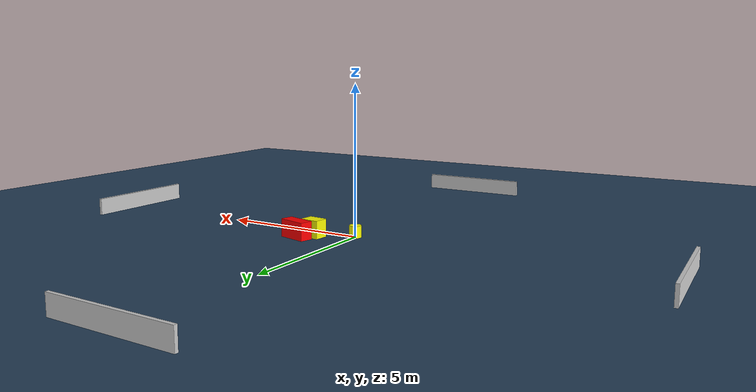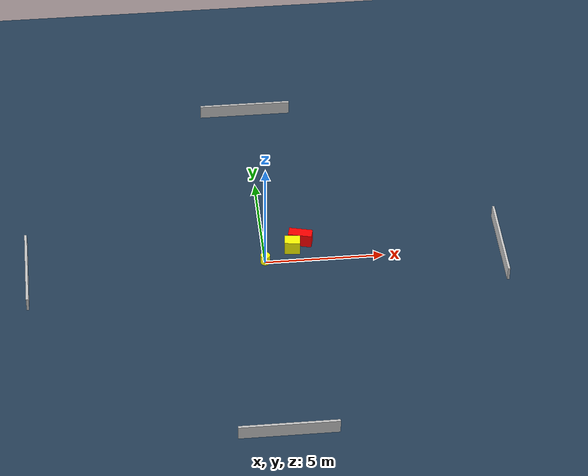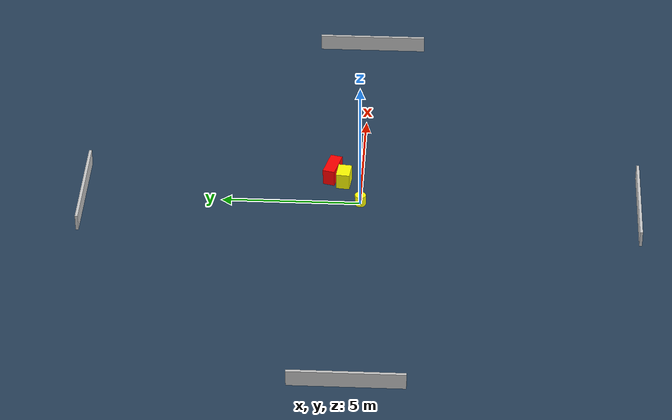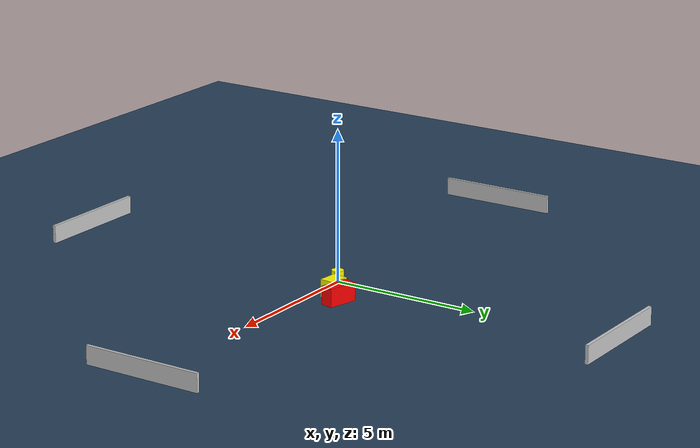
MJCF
<?xml version="1.0" ?>
<mujoco model="generated_environment">
  <option timestep="0.01" integrator="RK4" cone="elliptic"/>
  <default>
    <geom density="1"/>
  </default>
  <asset>
    <texture builtin="gradient" height="3072" name="skybox" rgb1="0.3 0.5 0.7" rgb2="0 0 0" type="skybox" width="512"/>
    <texture builtin="checker" height="300" name="groundplane" rgb1="0.2 0.3 0.4" rgb2="0.1 0.2 0.3" type="2d" width="300"/>
    <material name="groundplane" reflectance="0.2" texrepeat="5 5" texture="groundplane"/>
  </asset>
  <worldbody>
    <light dir="0 0 -1" directional="true" pos="0 0 1.5"/>
    <geom condim="3" friction="0.5 0.005 0.001" material="groundplane" name="floor" pos="0 0 0" size="0 0 0.05" type="plane"/>
    <body name="walls">
      <geom name="wall_1" condim="4" pos="-10.0 0.0 0.3" rgba="0.800000011920929 0.800000011920929 0.800000011920929 1.0" size="0.05 2.0 0.3" type="box"/>
      <geom name="wall_2" condim="4" pos="10.0 0.0 0.3" rgba="0.800000011920929 0.800000011920929 0.800000011920929 1.0" size="0.05 2.0 0.3" type="box"/>
      <geom name="wall_3" condim="4" pos="0.0 -10.0 0.3" rgba="0.800000011920929 0.800000011920929 0.800000011920929 1.0" size="2.0 0.05 0.3" type="box"/>
      <geom name="wall_4" condim="4" pos="0.0 10.0 0.3" rgba="0.800000011920929 0.800000011920929 0.800000011920929 1.0" size="2.0 0.05 0.3" type="box"/>
    </body>
    <body name="robot">
      <joint name="joint_x" type="slide" pos="0 0 0" axis="1 0 0"/>
      <joint name="joint_y" type="slide" pos="0 0 0" axis="0 1 0"/>
      <geom name="robot" type="cylinder" pos="0.0 0.0 0.2" size="0.2 0.2 0.0" mass="5.0" friction="1.0 0.005 0.0001" condim="4" rgba="1.0 1.0 0.0 1.0"/>
    </body>
    <body name="obstacle_1_movable">
      <geom name="obstacle_1_movable" condim="4" pos="1.2043400142622267 0.6551788078816289 0.3" euler="0 0 83.95044462918732" friction="0.0 0.005 0.001" rgba="1.0 1.0 0.0 1.0" size="0.24397547056650032 0.32829681431555613 0.3" type="box" mass="0.1"/>
      <joint type="free"/>
    </body>
    <body name="obstacle_2_static">
      <geom name="obstacle_2_static" condim="4" pos="1.5902440596172656 1.0891572132281486 0.3" euler="0 0 346.009708018894" friction="0.0 0.005 0.001" rgba="1.0 0.0 0.0 1.0" size="0.5007735858404044 0.21772937471065296 0.3" type="box"/>
    </body>
  </worldbody>
  <actuator>
    <motor name="actuator_x" joint="joint_x" gear="1" ctrlrange="-1 1"/>
    <motor name="actuator_y" joint="joint_y" gear="1" ctrlrange="-1 1"/>
  </actuator>
</mujoco>
